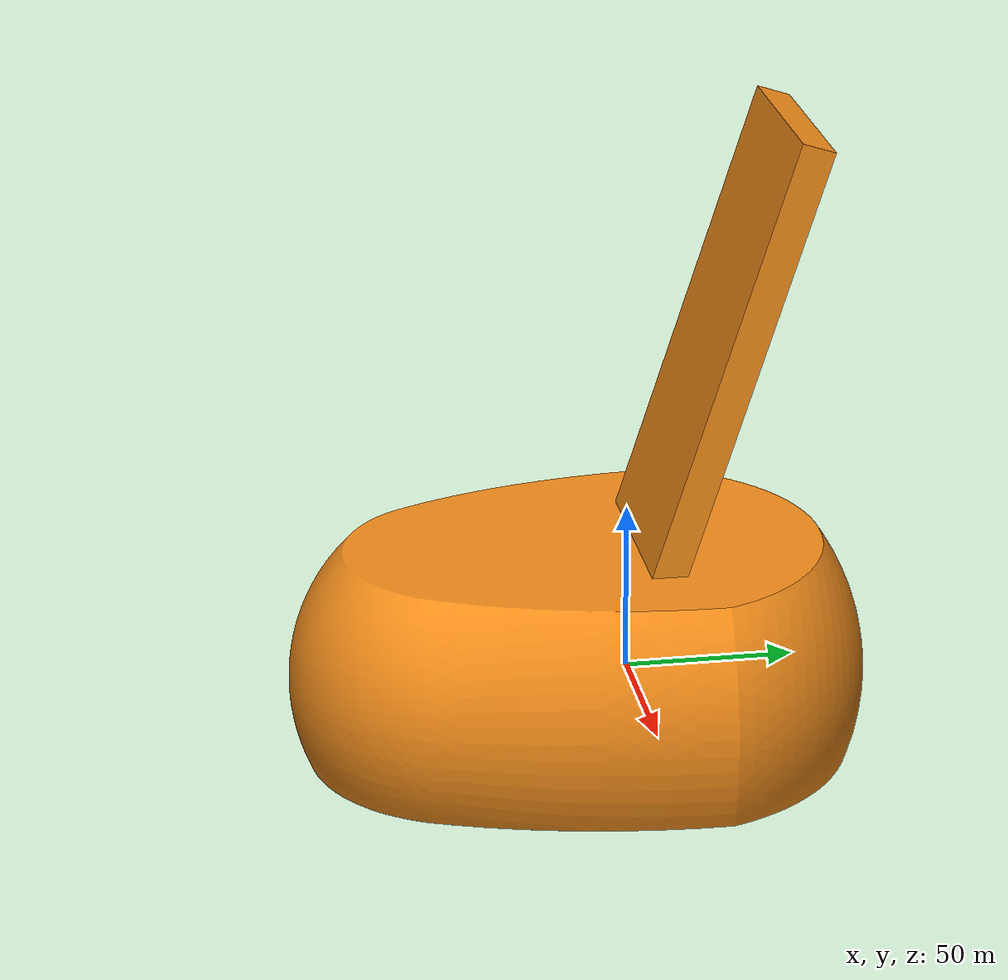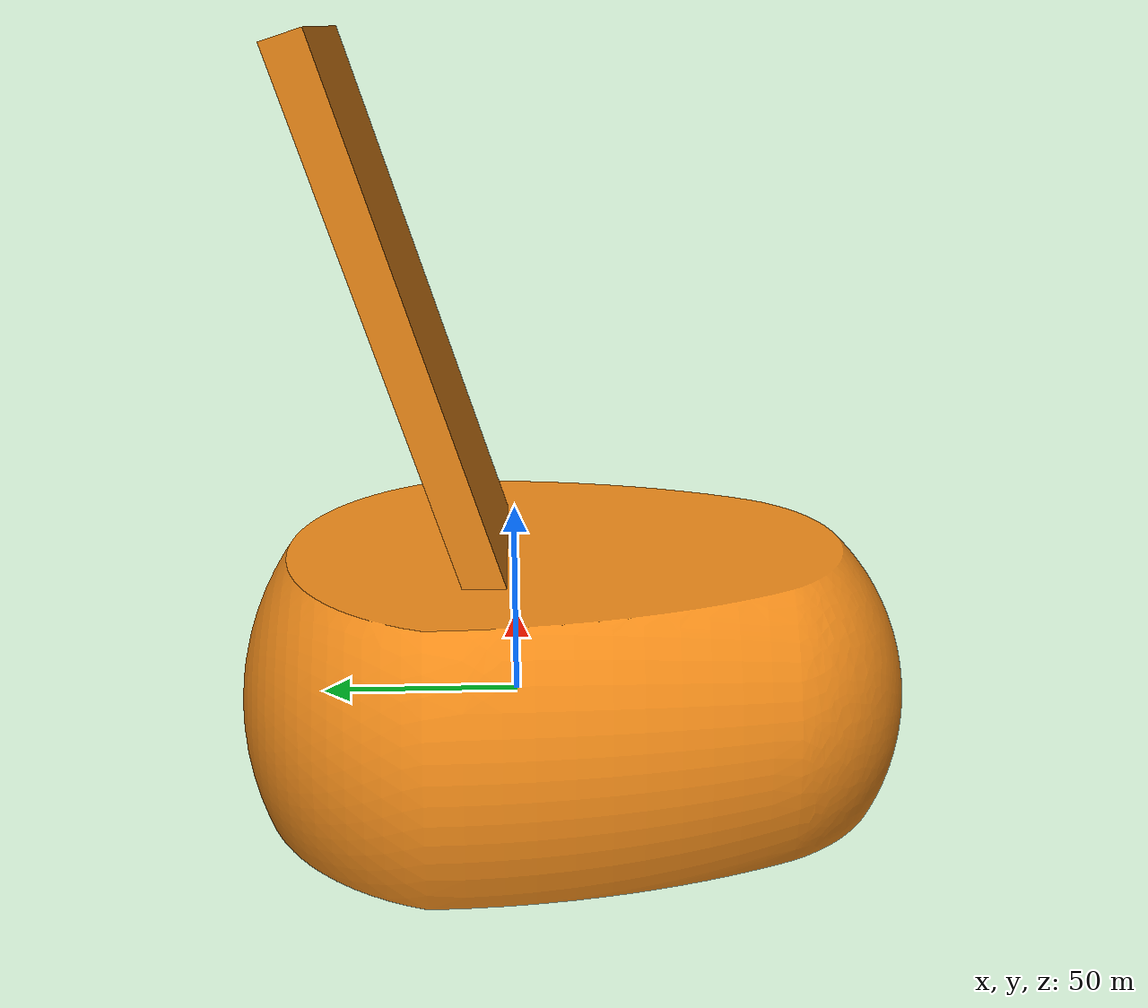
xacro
<?xml version="1.0"?>
<!-- Revolute-Revolute Manipulator -->
<robot name="robobo" xmlns:xacro="http://www.ros.org/wiki/xacro">

  <!-- Constants for robot dimensions -->
  <xacro:property name="PI" value="3.1415926535897931"/>
  <xacro:property name="mass" value="1" /> <!-- arbitrary value for mass -->
  <xacro:property name="camera_link" value="0.05" /> <!-- Size of square 'camera' box -->

  <!-- Import all Gazebo-customization elements, including Gazebo colors -->
  <xacro:include filename="$(find robobo_description)/urdf/robobo.gazebo" />
  <!-- Import Rviz colors -->
  <xacro:include filename="$(find robobo_description)/urdf/materials.xacro" />

  <!-- Used for fixing robot to Gazebo 'base_link' -->
  <link name="world"/>

  <joint name="fixed" type="fixed">
    <parent link="world"/>
    <child link="robobo_link"/>
  </joint>

  <!-- Base Link -->
  <link name="robobo_link">
    <collision>
      <origin xyz="0 0 0" rpy="0 0 0"/>
      <geometry>
        <mesh filename="package://robobo_description/meshes/robobo.stl"/>
      </geometry>
    </collision>

    <visual>
      <origin xyz="0 0 0" rpy="0 0 0"/>
      <geometry>
        <mesh filename="package://robobo_description/meshes/robobo.stl"/>
      </geometry>
      <material name="orange"/>
    </visual>

    <inertial>
      <origin xyz="0 0 0" rpy="0 0 0"/>
      <mass value="${mass}"/>
      <inertia
	  ixx="${mass}" ixy="0.0" ixz="0.0"
	  iyy="${mass}" iyz="0.0"
	  izz="${mass}"/>
    </inertial>
  </link>

  <joint name="ir_joint" type="fixed">
    <axis xyz="0 1 0" />
    <origin xyz="0 0 0" rpy="0 0 0"/>
    <parent link="robobo_link"/>
    <child link="ir_link"/>
  </joint>

  <link name="ir_link">
    <collision>
      <origin xyz="20 0 0" rpy="0 0 0"/>
      <geometry>
	    <box size="0.1 0.1 0.1"/>
      </geometry>
    </collision>

    <visual>
      <origin xyz="20 0 0" rpy="0 0 0"/>
      <geometry>
        <box size="0.1 0.1 0.1"/>
      </geometry>
    </visual>

    <inertial>
      <mass value="1e-5" />
      <origin xyz="0 0 0" rpy="0 0 0"/>
      <inertia ixx="1e-6" ixy="0" ixz="0" iyy="1e-6" iyz="0" izz="1e-6" />
    </inertial>
  </link>

  <joint name="camera_joint" type="fixed">
    <axis xyz="0 1 0" />
    <origin xyz="0 0 0" rpy="0 0 0"/>
    <parent link="robobo_link"/>
    <child link="camera_link"/>
  </joint>

  <!-- Camera -->
  <link name="camera_link">
    <collision>
      <origin xyz="10 0 0" rpy="0 0 0"/>
      <geometry>
	    <box size="1 1 1"/>
      </geometry>
    </collision>

    <visual>
      <origin xyz="10 0 0" rpy="0 0 0"/>
      <geometry>
	<box size="1 1 1"/>
      </geometry>
      <material name="red"/>
    </visual>

    <inertial>
      <mass value="1e-5" />
      <origin xyz="0 0 0" rpy="0 0 0"/>
      <inertia ixx="1e-6" ixy="0" ixz="0" iyy="1e-6" iyz="0" izz="1e-6" />
    </inertial>
  </link>

  <!-- generate an optical frame http://www.ros.org/reps/rep-0103.html#suffix-frames
      so that ros and opencv can operate on the camera frame correctly -->
  <joint name="camera_optical_joint" type="fixed">
    <!-- these values have to be these values otherwise the gazebo camera image
        won't be aligned properly with the frame it is supposedly originating from -->
    <origin xyz="0 0 0" rpy="${-pi/2} 0 ${-pi/2}"/>
    <parent link="camera_link"/>
    <child link="camera_link_optical"/>
  </joint>

  <link name="camera_link_optical">
  </link>

  <transmission name="tran1">
    <type>transmission_interface/SimpleTransmission</type>
    <joint name="joint1">
      <hardwareInterface>hardware_interface/EffortJointInterface</hardwareInterface>
    </joint>
    <actuator name="motor1">
      <hardwareInterface>hardware_interface/EffortJointInterface</hardwareInterface>
      <mechanicalReduction>1</mechanicalReduction>
    </actuator>
  </transmission>

  <transmission name="tran2">
    <type>transmission_interface/SimpleTransmission</type>
    <joint name="joint2">
      <hardwareInterface>hardware_interface/EffortJointInterface</hardwareInterface>
    </joint>
    <actuator name="motor2">
      <hardwareInterface>hardware_interface/EffortJointInterface</hardwareInterface>
      <mechanicalReduction>1</mechanicalReduction>
    </actuator>
  </transmission>

</robot>
